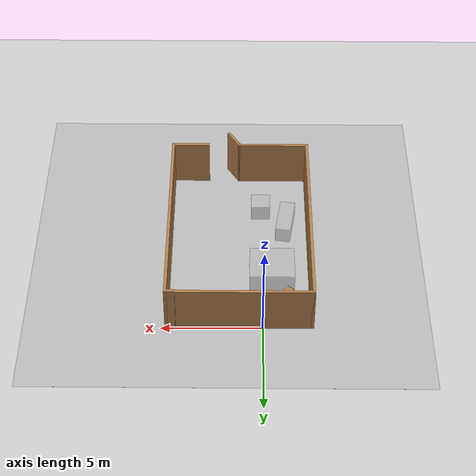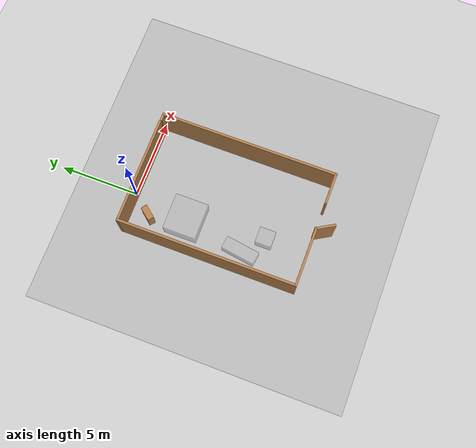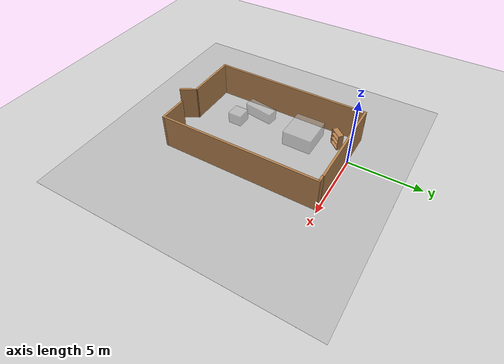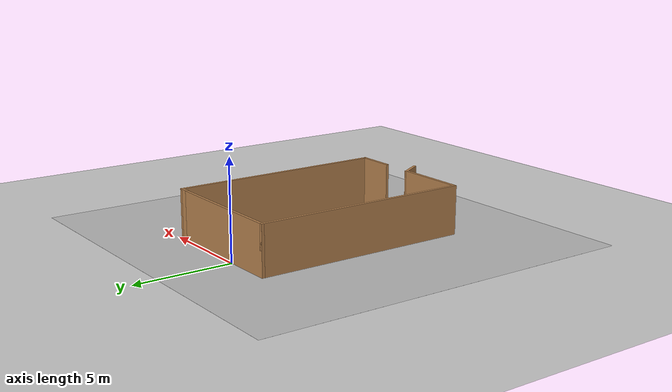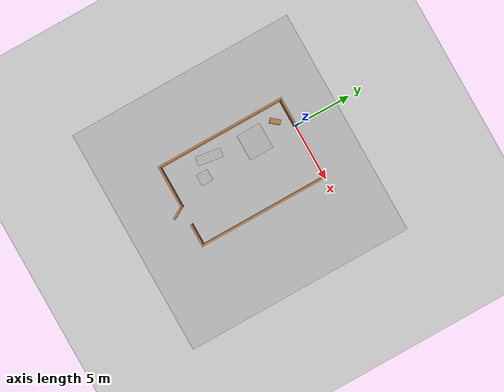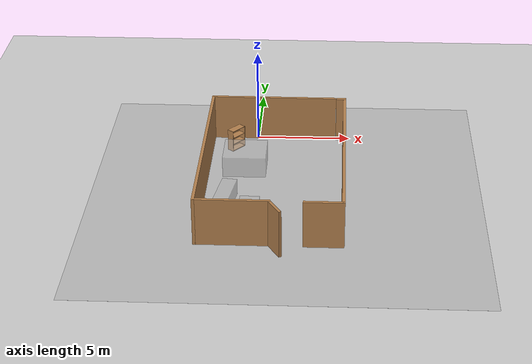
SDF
<sdf version="1.7">
 <world name="default">
  <light name="sun" type="directional">
   <pose>0 0 10 0 -0 0</pose>
   <diffuse>0.8 0.8 0.8 1</diffuse>
   <specular>0.2 0.2 0.2 1</specular>
   <attenuation>
    <range>1000</range>
    <constant>0.9</constant>
    <linear>0.01</linear>
    <quadratic>0.001</quadratic>
   </attenuation>
   <direction>-0.5 0.1 -0.9</direction>
   <spot><inner_angle>0</inner_angle><outer_angle>0</outer_angle><falloff>0</falloff></spot>
  </light>
  <model name="ground_plane">
   <static>1</static>
   <link name="link">
    <collision name="collision">
     <geometry><plane><normal>0 0 1</normal><size>100 100</size></plane></geometry>
     <surface><friction><ode><mu>100</mu><mu2>50</mu2></ode></friction></surface>
    </collision>
    <visual name="visual">
     <cast_shadows>0</cast_shadows>
     <geometry><plane><normal>0 0 1</normal><size>100 100</size></plane></geometry>
     <material>
      <script><uri>file://media/materials/scripts/gazebo.material</uri><name>Gazebo/Grey</name></script>
     </material>
    </visual>
   </link>
  </model>
  <gravity>0 0 -9.8</gravity>
  <magnetic_field>6e-06 2.3e-05 -4.2e-05</magnetic_field>
  <atmosphere type="adiabatic"/>
  <physics type="ode">
   <max_step_size>0.001</max_step_size>
   <real_time_factor>1</real_time_factor>
   <real_time_update_rate>1000</real_time_update_rate>
  </physics>
  <scene><ambient>0.4 0.4 0.4 1</ambient><background>0.7 0.7 0.7 1</background><shadows>1</shadows></scene>
  <spherical_coordinates>
   <surface_model>EARTH_WGS84</surface_model>
   <latitude_deg>0</latitude_deg>
   <longitude_deg>0</longitude_deg>
   <elevation>0</elevation>
   <heading_deg>0</heading_deg>
  </spherical_coordinates>
  <model name="bookshelf">
   <static>1</static>
   <link name="link">
    <inertial><mass>1</mass></inertial>
    <collision name="back">
     <pose>0 0.005 0.6 0 -0 0</pose>
     <geometry><box><size>0.9 0.01 1.2</size></box></geometry>
    </collision>
    <visual name="visual1">
     <pose>0 0.005 0.6 0 -0 0</pose>
     <geometry><box><size>0.9 0.01 1.2</size></box></geometry>
     <material>
      <script><uri>file://media/materials/scripts/gazebo.material</uri><name>Gazebo/Wood</name></script>
     </material>
    </visual>
    <collision name="left_side">
     <pose>0.45 -0.195 0.6 0 -0 0</pose>
     <geometry><box><size>0.02 0.4 1.2</size></box></geometry>
    </collision>
    <visual name="visual2">
     <pose>0.45 -0.195 0.6 0 -0 0</pose>
     <geometry><box><size>0.02 0.4 1.2</size></box></geometry>
     <material>
      <script><uri>file://media/materials/scripts/gazebo.material</uri><name>Gazebo/Wood</name></script>
     </material>
    </visual>
    <collision name="right_side">
     <pose>-0.45 -0.195 0.6 0 -0 0</pose>
     <geometry><box><size>0.02 0.4 1.2</size></box></geometry>
    </collision>
    <visual name="visual3">
     <pose>-0.45 -0.195 0.6 0 -0 0</pose>
     <geometry><box><size>0.02 0.4 1.2</size></box></geometry>
     <material>
      <script><uri>file://media/materials/scripts/gazebo.material</uri><name>Gazebo/Wood</name></script>
     </material>
    </visual>
    <collision name="bottom">
     <pose>0 -0.195 0.03 0 -0 0</pose>
     <geometry><box><size>0.88 0.4 0.06</size></box></geometry>
    </collision>
    <visual name="visual4">
     <pose>0 -0.195 0.03 0 -0 0</pose>
     <geometry><box><size>0.88 0.4 0.06</size></box></geometry>
     <material>
      <script><uri>file://media/materials/scripts/gazebo.material</uri><name>Gazebo/Wood</name></script>
     </material>
    </visual>
    <collision name="top">
     <pose>0 -0.195 1.19 0 -0 0</pose>
     <geometry><box><size>0.88 0.4 0.02</size></box></geometry>
    </collision>
    <visual name="visual5">
     <pose>0 -0.195 1.19 0 -0 0</pose>
     <geometry><box><size>0.88 0.4 0.02</size></box></geometry>
     <material>
      <script><uri>file://media/materials/scripts/gazebo.material</uri><name>Gazebo/Wood</name></script>
     </material>
    </visual>
    <collision name="low_shelf">
     <pose>0 -0.195 0.43 0 -0 0</pose>
     <geometry><box><size>0.88 0.4 0.02</size></box></geometry>
    </collision>
    <visual name="visual6">
     <pose>0 -0.195 0.43 0 -0 0</pose>
     <geometry><box><size>0.88 0.4 0.02</size></box></geometry>
     <material>
      <script><uri>file://media/materials/scripts/gazebo.material</uri><name>Gazebo/Wood</name></script>
     </material>
    </visual>
    <collision name="high_shelf">
     <pose>0 -0.195 0.8 0 -0 0</pose>
     <geometry><box><size>0.88 0.4 0.02</size></box></geometry>
    </collision>
    <visual name="visual7">
     <pose>0 -0.195 0.8 0 -0 0</pose>
     <geometry><box><size>0.88 0.4 0.02</size></box></geometry>
     <material>
      <script><uri>file://media/materials/scripts/gazebo.material</uri><name>Gazebo/Wood</name></script>
     </material>
    </visual>
   </link>
   <pose>-1.27204 -1.18712 0 0 -0 0.869974</pose>
  </model>
  <model name="wall_of_room_with_objects_on_ground">
   <pose>0.87 -6.12754 0 0 -0 0</pose>
   <link name="Wall_2">
    <collision name="Wall_2_Collision">
     <geometry><box><size>11.25 0.15 2.5</size></box></geometry>
     <pose>0 0 1.25 0 -0 0</pose>
    </collision>
    <visual name="Wall_2_Visual">
     <pose>0 0 1.25 0 -0 0</pose>
     <geometry><box><size>11.25 0.15 2.5</size></box></geometry>
     <material>
      <script><uri>file://media/materials/scripts/gazebo.material</uri><name>Gazebo/Wood</name></script>
      <ambient>1 1 1 1</ambient>
     </material>
     <meta><layer>0</layer></meta>
    </visual>
    <pose>-3.3 0.47754 0 0 -0 -1.5708</pose>
   </link>
   <link name="Wall_4">
    <collision name="Wall_4_Collision">
     <geometry><box><size>3.75 0.15 2.5</size></box></geometry>
     <pose>0 0 1.25 0 -0 0</pose>
    </collision>
    <visual name="Wall_4_Visual">
     <pose>0 0 1.25 0 -0 0</pose>
     <geometry><box><size>3.75 0.15 2.5</size></box></geometry>
     <material>
      <script><uri>file://media/materials/scripts/gazebo.material</uri><name>Gazebo/Wood</name></script>
      <ambient>1 1 1 1</ambient>
     </material>
     <meta><layer>0</layer></meta>
    </visual>
    <pose>-1.5 -5.07246 0 0 -0 0</pose>
   </link>
   <link name="Wall_5">
    <collision name="Wall_5_Collision">
     <geometry><box><size>1.25 0.15 2.5</size></box></geometry>
     <pose>0 0 1.25 0 -0 0</pose>
    </collision>
    <visual name="Wall_5_Visual">
     <pose>0 0 1.25 0 -0 0</pose>
     <geometry><box><size>1.25 0.15 2.5</size></box></geometry>
     <material>
      <script><uri>file://media/materials/scripts/gazebo.material</uri><name>Gazebo/Wood</name></script>
      <ambient>1 1 1 1</ambient>
     </material>
     <meta><layer>0</layer></meta>
    </visual>
    <pose>0.575001 -5.54877 0 0 -0 -1.0472</pose>
   </link>
   <link name="Wall_7">
    <collision name="Wall_7_Collision">
     <geometry><box><size>6.75 0.15 2.5</size></box></geometry>
     <pose>0 0 1.25 0 -0 0</pose>
    </collision>
    <visual name="Wall_7_Visual">
     <pose>0 0 1.25 0 -0 0</pose>
     <geometry><box><size>6.75 0.15 2.5</size></box></geometry>
     <material>
      <script><uri>file://media/materials/scripts/gazebo.material</uri><name>Gazebo/Wood</name></script>
      <ambient>1 1 1 1</ambient>
     </material>
     <meta><layer>0</layer></meta>
    </visual>
    <pose>0 6.02754 0 0 -0 0</pose>
   </link>
   <static>1</static>
  </model>
  <model name="Floor_room">
   <link name="main">
    <pose>0 0 0.01 0 -0 0</pose>
    <collision name="main_Collision"><geometry><box><size>20 20 0.001</size></box></geometry></collision>
    <visual name="main_Visual">
     <geometry><box><size>20 20 0.001</size></box></geometry>
     <material>
      <script>
       <uri>model://Floor_room/materials/scripts</uri>
       <uri>model://Floor_room/materials/textures</uri>
       <name>floor_room</name>
      </script>
     </material>
    </visual>
   </link>
   <static>1</static>
   <pose>1.76134 -6.19445 0 0 -0 0</pose>
  </model>
  <model name="ground_objects_wall_2">
   <pose>2.39607 -5.65252 0 0 -0 0</pose>
   <link name="Wall_0">
    <collision name="Wall_0_Collision">
     <geometry><box><size>11.25 0.15 2.5</size></box></geometry>
     <pose>0 0 1.25 0 -0 0</pose>
    </collision>
    <visual name="Wall_0_Visual">
     <pose>0 0 1.25 0 -0 0</pose>
     <geometry><box><size>11.25 0.15 2.5</size></box></geometry>
     <material>
      <script><uri>file://media/materials/scripts/gazebo.material</uri><name>Gazebo/Wood</name></script>
      <ambient>0.756863 0.490196 0.0666667 1</ambient>
     </material>
     <meta><layer>0</layer></meta>
    </visual>
    <pose>2.32107 -0.027518 0 0 -0 -1.5708</pose>
   </link>
   <link name="Wall_4">
    <collision name="Wall_4_Collision">
     <geometry><box><size>0.530939 0.15 2.5</size></box></geometry>
     <pose>0 0 1.25 0 -0 0</pose>
    </collision>
    <visual name="Wall_4_Visual">
     <pose>0 0 1.25 0 -0 0</pose>
     <geometry><box><size>0.530939 0.15 2.5</size></box></geometry>
     <material>
      <script><uri>file://media/materials/scripts/gazebo.material</uri><name>Gazebo/Wood</name></script>
      <ambient>1 1 1 1</ambient>
     </material>
     <meta><layer>0</layer></meta>
    </visual>
    <pose>2.1306 5.52248 0 0 -0 3.14159</pose>
   </link>
   <link name="Wall_6">
    <collision name="Wall_6_Collision">
     <geometry><box><size>2 0.15 2.5</size></box></geometry>
     <pose>0 0 1.25 0 -0 0</pose>
    </collision>
    <visual name="Wall_6_Visual">
     <pose>0 0 1.25 0 -0 0</pose>
     <geometry><box><size>2 0.15 2.5</size></box></geometry>
     <material>
      <script><uri>file://media/materials/scripts/gazebo.material</uri><name>Gazebo/Wood</name></script>
      <ambient>1 1 1 1</ambient>
     </material>
     <meta><layer>0</layer></meta>
    </visual>
    <pose>1.39607 -5.57752 0 0 -0 3.14159</pose>
   </link>
   <static>1</static>
  </model>
  <model name="ObjBbox">
   <link name="link">
    <inertial>
     <mass>1</mass>
     <inertia>
      <ixx>0.166667</ixx>
      <ixy>0</ixy>
      <ixz>0</ixz>
      <iyy>0.166667</iyy>
      <iyz>0</iyz>
      <izz>0.166667</izz>
     </inertia>
    </inertial>
    <visual name="visual">
     <geometry><box><size>2.25528 2.07992 1.11263</size></box></geometry>
     <material>
      <script><name>Gazebo/Transparent</name><uri>file://media/materials/scripts/gazebo.material</uri></script>
      <shader type="pixel"/>
     </material>
    </visual>
    <collision name="collision">
     <geometry><box><size>2.25528 2.07992 0.556314</size></box></geometry>
     <surface>
      <friction>
       <ode><mu>1</mu><mu2>1</mu2><fdir1>0 0 0</fdir1><slip1>0</slip1><slip2>0</slip2></ode>
       <torsional>
        <coefficient>1</coefficient>
        <patch_radius>0</patch_radius>
        <surface_radius>0</surface_radius>
        <use_patch_radius>1</use_patch_radius>
        <ode><slip>0</slip></ode>
       </torsional>
      </friction>
      <bounce><restitution_coefficient>0</restitution_coefficient><threshold>1e+06</threshold></bounce>
      <contact>
       <collide_without_contact>0</collide_without_contact>
       <collide_without_contact_bitmask>1</collide_without_contact_bitmask>
       <collide_bitmask>1</collide_bitmask>
       <ode>
        <soft_cfm>0</soft_cfm>
        <soft_erp>0.2</soft_erp>
        <kp>1e+13</kp>
        <kd>1</kd>
        <max_vel>0.01</max_vel>
        <min_depth>0</min_depth>
       </ode>
       <bullet>
        <split_impulse>1</split_impulse>
        <split_impulse_penetration_threshold>-0.01</split_impulse_penetration_threshold>
        <soft_cfm>0</soft_cfm>
        <soft_erp>0.2</soft_erp>
        <kp>1e+13</kp>
        <kd>1</kd>
       </bullet>
      </contact>
     </surface>
    </collision>
   </link>
   <static>1</static>
   <pose>-0.492605 -3.53561 0.56688 0 -0 0</pose>
  </model>
  <model name="ObjBbox_clone">
   <link name="link">
    <inertial>
     <mass>1</mass>
     <inertia>
      <ixx>0.166667</ixx>
      <ixy>0</ixy>
      <ixz>0</ixz>
      <iyy>0.166667</iyy>
      <iyz>0</iyz>
      <izz>0.166667</izz>
     </inertia>
    </inertial>
    <visual name="visual">
     <geometry><box><size>0.771297 2.14467 0.843737</size></box></geometry>
     <material>
      <script><name>Gazebo/Transparent</name><uri>file://media/materials/scripts/gazebo.material</uri></script>
      <shader type="pixel"/>
     </material>
    </visual>
    <collision name="collision">
     <geometry><box><size>0.771297 2.14467 0.421867</size></box></geometry>
     <surface>
      <friction>
       <ode><mu>1</mu><mu2>1</mu2><fdir1>0 0 0</fdir1><slip1>0</slip1><slip2>0</slip2></ode>
       <torsional>
        <coefficient>1</coefficient>
        <patch_radius>0</patch_radius>
        <surface_radius>0</surface_radius>
        <use_patch_radius>1</use_patch_radius>
        <ode><slip>0</slip></ode>
       </torsional>
      </friction>
      <bounce><restitution_coefficient>0</restitution_coefficient><threshold>1e+06</threshold></bounce>
      <contact>
       <collide_without_contact>0</collide_without_contact>
       <collide_without_contact_bitmask>1</collide_without_contact_bitmask>
       <collide_bitmask>1</collide_bitmask>
       <ode>
        <soft_cfm>0</soft_cfm>
        <soft_erp>0.2</soft_erp>
        <kp>1e+13</kp>
        <kd>1</kd>
        <max_vel>0.01</max_vel>
        <min_depth>0</min_depth>
       </ode>
       <bullet>
        <split_impulse>1</split_impulse>
        <split_impulse_penetration_threshold>-0.01</split_impulse_penetration_threshold>
        <soft_cfm>0</soft_cfm>
        <soft_erp>0.2</soft_erp>
        <kp>1e+13</kp>
        <kd>1</kd>
       </bullet>
      </contact>
     </surface>
    </collision>
   </link>
   <static>1</static>
   <pose>-1.24621 -7.34965 0.438028 0 0 -0.146056</pose>
  </model>
  <model name="ObjBbox_clone_clone">
   <link name="link">
    <inertial>
     <mass>1</mass>
     <inertia>
      <ixx>0.166667</ixx>
      <ixy>0</ixy>
      <ixz>0</ixz>
      <iyy>0.166667</iyy>
      <iyz>0</iyz>
      <izz>0.166667</izz>
     </inertia>
    </inertial>
    <visual name="visual">
     <geometry><box><size>0.986967 1.01093 0.843737</size></box></geometry>
     <material>
      <script><name>Gazebo/Transparent</name><uri>file://media/materials/scripts/gazebo.material</uri></script>
      <shader type="pixel"/>
     </material>
    </visual>
    <collision name="collision">
     <geometry><box><size>0.986967 1.01093 0.421867</size></box></geometry>
     <surface>
      <friction>
       <ode><mu>1</mu><mu2>1</mu2><fdir1>0 0 0</fdir1><slip1>0</slip1><slip2>0</slip2></ode>
       <torsional>
        <coefficient>1</coefficient>
        <patch_radius>0</patch_radius>
        <surface_radius>0</surface_radius>
        <use_patch_radius>1</use_patch_radius>
        <ode><slip>0</slip></ode>
       </torsional>
      </friction>
      <bounce><restitution_coefficient>0</restitution_coefficient><threshold>1e+06</threshold></bounce>
      <contact>
       <collide_without_contact>0</collide_without_contact>
       <collide_without_contact_bitmask>1</collide_without_contact_bitmask>
       <collide_bitmask>1</collide_bitmask>
       <ode>
        <soft_cfm>0</soft_cfm>
        <soft_erp>0.2</soft_erp>
        <kp>1e+13</kp>
        <kd>1</kd>
        <max_vel>0.01</max_vel>
        <min_depth>0</min_depth>
       </ode>
       <bullet>
        <split_impulse>1</split_impulse>
        <split_impulse_penetration_threshold>-0.01</split_impulse_penetration_threshold>
        <soft_cfm>0</soft_cfm>
        <soft_erp>0.2</soft_erp>
        <kp>1e+13</kp>
        <kd>1</kd>
       </bullet>
      </contact>
     </surface>
    </collision>
   </link>
   <static>1</static>
   <pose>0.043293 -8.49948 0.438028 0 -0 0.000109</pose>
  </model>
 </world>
</sdf>
